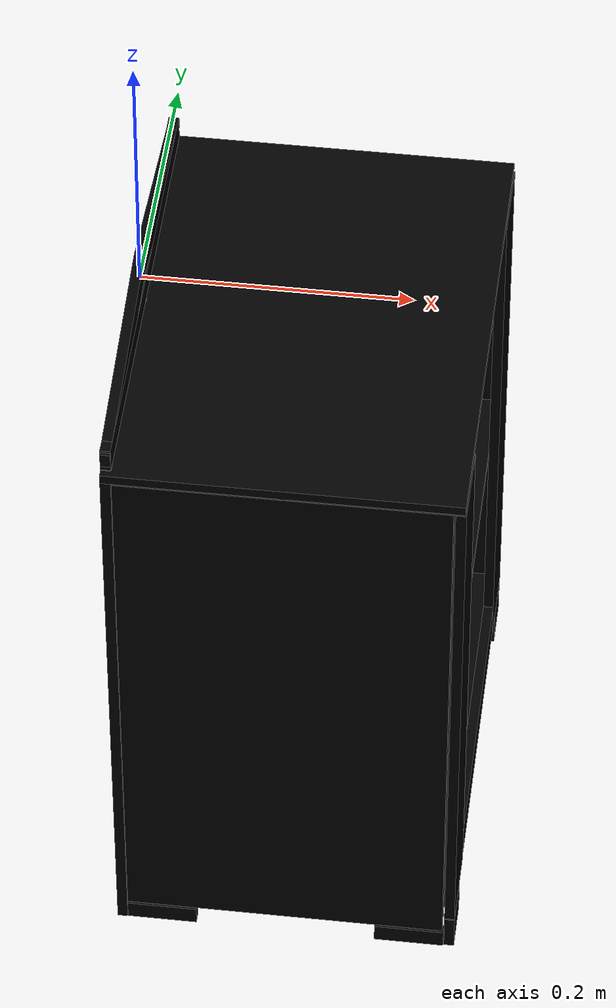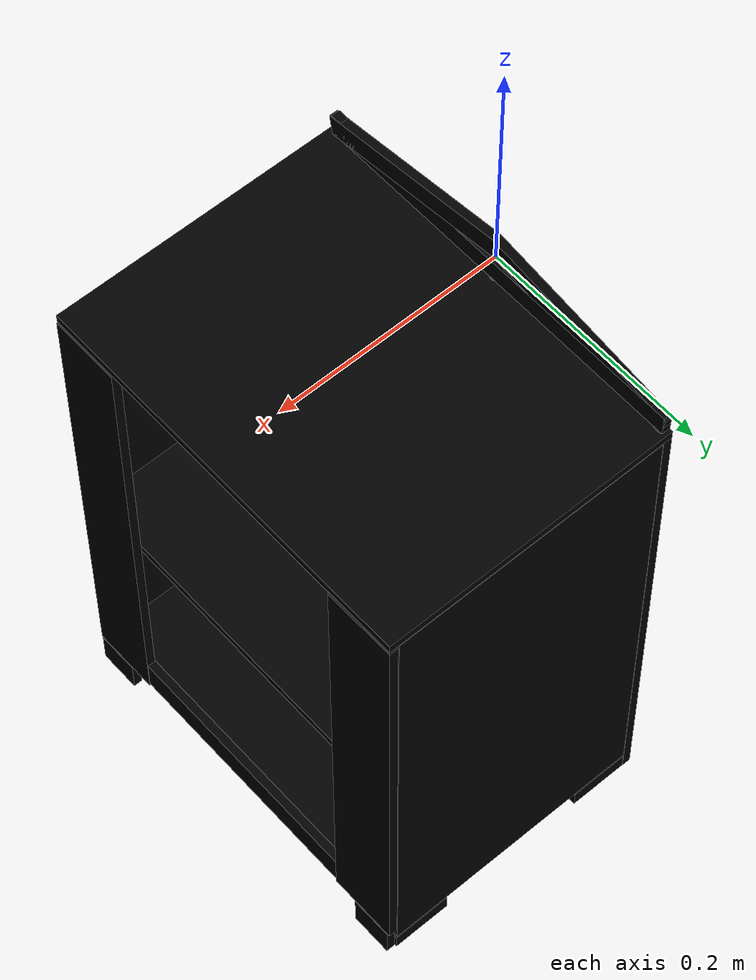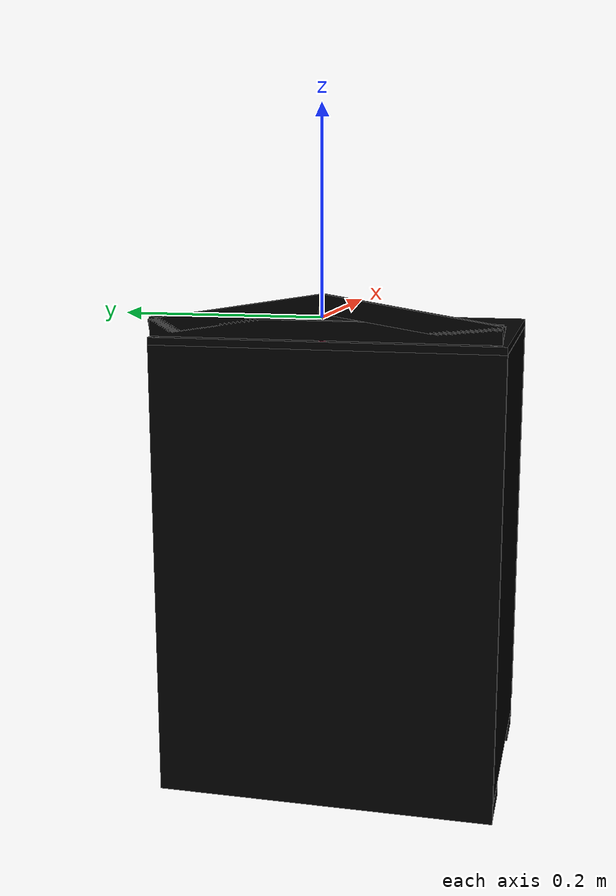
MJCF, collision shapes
<mujoco model="bookcase_hensvik_0565">
    <custom>
        <numeric data="-0.34873 0.261326 0.00379 0.703856 0.067999 -0.703802 0.068005" name="0_part0_initpos"/>
        <numeric data="-0.249609 0.321251 0.003831 0.707107 0.000464 -0.707107 0.000464" name="9_part9_initpos"/>
        <numeric data="0.510708 -0.221477 0.003831 0.999664 -0.0 0.0 0.025928" name="8_part8_initpos"/>
        <numeric data="0.424423 0.078883 0.003841 0.706489 0.029149 0.70652 -0.029199" name="7_part7_initpos"/>
        <numeric data="-0.602976 -0.20608 0.003841 0.506919 0.493015 -0.506909 0.492963" name="6_part6_initpos"/>
        <numeric data="0.063299 -0.234001 0.003831 0.706994 -0.012618 0.706994 0.012618" name="5_part5_initpos"/>
        <numeric data="-0.032413 0.174661 0.003831 0.999008 0.0 0.0 0.044532" name="4_part4_initpos"/>
        <numeric data="-0.568739 0.259396 0.003831 0.9995 0.0 0.0 0.031628" name="3_part3_initpos"/>
        <numeric data="-0.370656 -0.206767 0.003793 0.705874 -0.70591 -0.041433 0.041431" name="2_part2_initpos"/>
        <numeric data="0.402221 0.303398 0.003771 0.495099 -0.495124 -0.504854 0.504828" name="1_part1_initpos"/>
    </custom>
    <asset>
        <mesh file="bookcase_hensvik_0565/0.stl" name="part0" scale="0.00038 0.00038 0.00038"/>
        <mesh file="bookcase_hensvik_0565/9.stl" name="part9" scale="0.00038 0.00038 0.00038"/>
        <mesh file="bookcase_hensvik_0565/8.stl" name="part8" scale="0.00038 0.00038 0.00038"/>
        <mesh file="bookcase_hensvik_0565/7.stl" name="part7" scale="0.00038 0.00038 0.00038"/>
        <mesh file="bookcase_hensvik_0565/6.stl" name="part6" scale="0.00038 0.00038 0.00038"/>
        <mesh file="bookcase_hensvik_0565/5.stl" name="part5" scale="0.00038 0.00038 0.00038"/>
        <mesh file="bookcase_hensvik_0565/4.stl" name="part4" scale="0.00038 0.00038 0.00038"/>
        <mesh file="bookcase_hensvik_0565/3.stl" name="part3" scale="0.00038 0.00038 0.00038"/>
        <mesh file="bookcase_hensvik_0565/2.stl" name="part2" scale="0.00038 0.00038 0.00038"/>
        <mesh file="bookcase_hensvik_0565/1.stl" name="part1" scale="0.00038 0.00038 0.00038"/>
    </asset>
    <equality>
        <weld active="false" body1="6_part6" body2="4_part4" solimp="1 1 0.5" solref="0.01 0.3"/>
        <weld active="false" body1="9_part9" body2="4_part4" solimp="1 1 0.5" solref="0.01 0.3"/>
        <weld active="false" body1="4_part4" body2="2_part2" solimp="1 1 0.5" solref="0.01 0.3"/>
        <weld active="false" body1="7_part7" body2="4_part4" solimp="1 1 0.5" solref="0.01 0.3"/>
        <weld active="false" body1="0_part0" body2="8_part8" solimp="1 1 0.5" solref="0.01 0.3"/>
        <weld active="false" body1="4_part4" body2="1_part1" solimp="1 1 0.5" solref="0.01 0.3"/>
        <weld active="false" body1="3_part3" body2="1_part1" solimp="1 1 0.5" solref="0.01 0.3"/>
        <weld active="false" body1="3_part3" body2="2_part2" solimp="1 1 0.5" solref="0.01 0.3"/>
        <weld active="false" body1="5_part5" body2="4_part4" solimp="1 1 0.5" solref="0.01 0.3"/>
        <weld active="false" body1="8_part8" body2="1_part1" solimp="1 1 0.5" solref="0.01 0.3"/>
        <weld active="false" body1="8_part8" body2="2_part2" solimp="1 1 0.5" solref="0.01 0.3"/>
    </equality>
    <worldbody>
        <body name="0_part0" pos="0.0 0.0 -0.0" quat="1 0 0 0">
            <geom conaffinity="0" contype="0" density="0" mesh="part0" name="0_part0_mesh" pos="0.0 0.0 0.0"
                  rgba="0.82 0.71 0.55 1" type="mesh"/>
            <site name="0_part0_horizontal_radius_site" pos="0.0 0.0 -0.0" quat="1 0 0 0" rgba="0 0 0 0"
                  size="0.00038"/>
            <site name="0_part0_top_site" pos="0.0 0.0 0.023418559098" quat="1 0 0 0" rgba="0 0 0 0" size="0.00038"/>
            <site name="0_part0_bottom_site" pos="0.0 0.0 -0.023418559098" quat="1 0 0 0" rgba="0 0 0 0"
                  size="0.00038"/>
            <site name="0_part0_corner_site8" pos="-0.0038608 0.178562 0.023418559098" quat="1 0 0 0" rgba="0 0 0 0"
                  size="0.0076"/>
            <site name="0_part0_corner_site7" pos="0.0038608 0.178562 0.023418559098" quat="1 0 0 0" rgba="0 0 0 0"
                  size="0.0076"/>
            <site name="0_part0_corner_site6" pos="0.0038608 -0.178562 0.023418559098" quat="1 0 0 0" rgba="0 0 0 0"
                  size="0.0076"/>
            <site name="0_part0_corner_site5" pos="-0.0038608 -0.178562 0.023418559098" quat="1 0 0 0" rgba="0 0 0 0"
                  size="0.0076"/>
            <site name="0_part0_corner_site4" pos="-0.0038608 0.178562 -0.023418559098" quat="1 0 0 0" rgba="0 0 0 0"
                  size="0.0076"/>
            <site name="0_part0_corner_site3" pos="0.0038608 0.178562 -0.023418559098" quat="1 0 0 0" rgba="0 0 0 0"
                  size="0.0076"/>
            <site name="0_part0_corner_site2" pos="0.0038608 -0.178562 -0.023418559098" quat="1 0 0 0" rgba="0 0 0 0"
                  size="0.0076"/>
            <site name="0_part0_corner_site1" pos="-0.0038608 -0.178562 -0.023418559098" quat="1 0 0 0" rgba="0 0 0 0"
                  size="0.0076"/>
            <geom density="50" name="noviz_collision_0_part0_0" pos="0.0 0.0010547698000000002 -0.01254" quat="1 0 0 0"
                  rgba="0 0 0 0" size="0.0038 0.1748 0.009500000000000001" solref="0.001 1" type="box"/>
            <geom density="50" name="noviz_collision_0_part0_1" pos="0.0 -0.08626 -0.00038"
                  quat="0.9969174 0.07845912 0 0" rgba="0 0 0 0" size="0.0038 0.0893 0.009500000000000001"
                  solref="0.001 1" type="box"/>
            <geom density="50" name="noviz_collision_0_part0_2" pos="0.0 0.08778000000000001 -0.00076"
                  quat="0.9969174 -0.07845903 0 0" rgba="0 0 0 0" size="0.0038 0.0893 0.009500000000000001"
                  solref="0.001 1" type="box"/>
            <site name="topback-top,0,180,conn_site1" pos="0.00045599999999999997 0.0 -0.02318" quat="1 0 0 0"
                  rgba="0.9019 0.0980 0.2941 0.3" size="0.0038"/>
        </body>
        <body name="9_part9" pos="0.252882402394 6.992e-09 -0.461829168004" quat="1 0 0 0">
            <geom conaffinity="0" contype="0" density="0" mesh="part9" name="9_part9_mesh" pos="0.0 0.0 0.0"
                  rgba="0.82 0.71 0.55 1" type="mesh"/>
            <site name="9_part9_horizontal_radius_site" pos="7.600000000000001e-11 -3.8000000000000004e-11 0.0"
                  quat="1 0 0 0" rgba="0 0 0 0" size="0.00038"/>
            <site name="9_part9_top_site" pos="3.8000000000000004e-11 -3.8000000000000004e-11 0.014478000000000001"
                  quat="1 0 0 0" rgba="0 0 0 0" size="0.00038"/>
            <site name="9_part9_bottom_site" pos="3.8000000000000004e-11 -3.8000000000000004e-11 -0.014478000000000001"
                  quat="1 0 0 0" rgba="0 0 0 0" size="0.00038"/>
            <site name="9_part9_corner_site8" pos="-0.0038608023560000003 0.115824006954 0.014478000000000001"
                  quat="1 0 0 0" rgba="0 0 0 0" size="0.0076"/>
            <site name="9_part9_corner_site7" pos="0.0038608024700000003 0.115824006954 0.014478000000000001"
                  quat="1 0 0 0" rgba="0 0 0 0" size="0.0076"/>
            <site name="9_part9_corner_site6" pos="0.0038608024700000003 -0.11582400699199999 0.014478000000000001"
                  quat="1 0 0 0" rgba="0 0 0 0" size="0.0076"/>
            <site name="9_part9_corner_site5" pos="-0.0038608023560000003 -0.11582400699199999 0.014478000000000001"
                  quat="1 0 0 0" rgba="0 0 0 0" size="0.0076"/>
            <site name="9_part9_corner_site4" pos="-0.0038608023560000003 0.115824006954 -0.014478000000000001"
                  quat="1 0 0 0" rgba="0 0 0 0" size="0.0076"/>
            <site name="9_part9_corner_site3" pos="0.0038608024700000003 0.115824006954 -0.014478000000000001"
                  quat="1 0 0 0" rgba="0 0 0 0" size="0.0076"/>
            <site name="9_part9_corner_site2" pos="0.0038608024700000003 -0.11582400699199999 -0.014478000000000001"
                  quat="1 0 0 0" rgba="0 0 0 0" size="0.0076"/>
            <site name="9_part9_corner_site1" pos="-0.0038608023560000003 -0.11582400699199999 -0.014478000000000001"
                  quat="1 0 0 0" rgba="0 0 0 0" size="0.0076"/>
            <geom density="50" name="noviz_collision_9_part9_0" pos="0.0 -7.6e-09 0.0" quat="1 0 0 0" rgba="0 0 0 0"
                  size="0.0038607885999999998 0.11582400000000001 0.014477992400000002" solref="0.001 1" type="box"/>
            <site name="front-bottom,0,conn_site1" pos="-0.0043623924 -7.6e-09 -0.0105108114"
                  quat="0.7071067 0 0.7071068 0" rgba="0.2352 0.7058 0.2941 0.3" size="0.0038"/>
        </body>
        <body name="8_part8" pos="0.126441201216 1.254e-09 -0.027279346102" quat="1 0 0 0">
            <geom conaffinity="0" contype="0" density="0" mesh="part8" name="8_part8_mesh" pos="0.0 0.0 0.0"
                  rgba="0.82 0.71 0.55 1" type="mesh"/>
            <site name="8_part8_horizontal_radius_site" pos="0.0 0.0 -0.0" quat="1 0 0 0" rgba="0 0 0 0"
                  size="0.00038"/>
            <site name="8_part8_top_site" pos="0.0 0.0 0.0038608129960000003" quat="1 0 0 0" rgba="0 0 0 0"
                  size="0.00038"/>
            <site name="8_part8_bottom_site" pos="0.0 0.0 -0.0038608129960000003" quat="1 0 0 0" rgba="0 0 0 0"
                  size="0.00038"/>
            <site name="8_part8_corner_site8" pos="-0.130302009272 0.178562009272 0.0038608129960000003" quat="1 0 0 0"
                  rgba="0 0 0 0" size="0.0076"/>
            <site name="8_part8_corner_site7" pos="0.130302009272 0.178562009272 0.0038608129960000003" quat="1 0 0 0"
                  rgba="0 0 0 0" size="0.0076"/>
            <site name="8_part8_corner_site6" pos="0.130302009272 -0.178562009272 0.0038608129960000003" quat="1 0 0 0"
                  rgba="0 0 0 0" size="0.0076"/>
            <site name="8_part8_corner_site5" pos="-0.130302009272 -0.178562009272 0.0038608129960000003" quat="1 0 0 0"
                  rgba="0 0 0 0" size="0.0076"/>
            <site name="8_part8_corner_site4" pos="-0.130302009272 0.178562009272 -0.0038608129960000003" quat="1 0 0 0"
                  rgba="0 0 0 0" size="0.0076"/>
            <site name="8_part8_corner_site3" pos="0.130302009272 0.178562009272 -0.0038608129960000003" quat="1 0 0 0"
                  rgba="0 0 0 0" size="0.0076"/>
            <site name="8_part8_corner_site2" pos="0.130302009272 -0.178562009272 -0.0038608129960000003" quat="1 0 0 0"
                  rgba="0 0 0 0" size="0.0076"/>
            <site name="8_part8_corner_site1" pos="-0.130302009272 -0.178562009272 -0.0038608129960000003"
                  quat="1 0 0 0" rgba="0 0 0 0" size="0.0076"/>
            <geom density="50" name="noviz_collision_8_part8_0" pos="-0.0003518648 0.0 -7.440400000000001e-06"
                  quat="1 0 0 0" rgba="0 0 0 0" size="0.129950158 0.178562 0.0038533747999999995" solref="0.001 1"
                  type="box"/>
            <site name="top-side,0,180,conn_site2" pos="0.0 0.17442000000000002 -0.0038608114" quat="1 0 0 0"
                  rgba="1.0 0.8823 0.0980 0.3" size="0.0038"/>
            <site name="top-side,0,180,conn_site1" pos="0.0 -0.1748 -0.0038608114" quat="1 0 0 0"
                  rgba="1.0 0.8823 0.0980 0.3" size="0.0038"/>
            <site name="top-topback,0,180,conn_site1" pos="-0.1259852 0.0 0.004099345" quat="1 0 0 0"
                  rgba="0.9019 0.0980 0.2941 0.3" size="0.0038"/>
        </body>
        <body name="7_part7" pos="0.252882402394 -0.14719300106400002 -0.272440159098" quat="1 0 0 0">
            <geom conaffinity="0" contype="0" density="0" mesh="part7" name="7_part7_mesh" pos="0.0 0.0 0.0"
                  rgba="0.82 0.71 0.55 1" type="mesh"/>
            <site name="7_part7_horizontal_radius_site" pos="7.600000000000001e-11 0.0 -0.0" quat="1 0 0 0"
                  rgba="0 0 0 0" size="0.00038"/>
            <site name="7_part7_top_site" pos="3.8000000000000004e-11 0.0 0.24130000000000001" quat="1 0 0 0"
                  rgba="0 0 0 0" size="0.00038"/>
            <site name="7_part7_bottom_site" pos="3.8000000000000004e-11 0.0 -0.24130000000000001" quat="1 0 0 0"
                  rgba="0 0 0 0" size="0.00038"/>
            <site name="7_part7_corner_site8" pos="-0.0038608023560000003 0.031369001178000004 0.24130000000000001"
                  quat="1 0 0 0" rgba="0 0 0 0" size="0.0076"/>
            <site name="7_part7_corner_site7" pos="0.0038608024700000003 0.031369001178000004 0.24130000000000001"
                  quat="1 0 0 0" rgba="0 0 0 0" size="0.0076"/>
            <site name="7_part7_corner_site6" pos="0.0038608024700000003 -0.031369001178000004 0.24130000000000001"
                  quat="1 0 0 0" rgba="0 0 0 0" size="0.0076"/>
            <site name="7_part7_corner_site5" pos="-0.0038608023560000003 -0.031369001178000004 0.24130000000000001"
                  quat="1 0 0 0" rgba="0 0 0 0" size="0.0076"/>
            <site name="7_part7_corner_site4" pos="-0.0038608023560000003 0.031369001178000004 -0.24130000000000001"
                  quat="1 0 0 0" rgba="0 0 0 0" size="0.0076"/>
            <site name="7_part7_corner_site3" pos="0.0038608024700000003 0.031369001178000004 -0.24130000000000001"
                  quat="1 0 0 0" rgba="0 0 0 0" size="0.0076"/>
            <site name="7_part7_corner_site2" pos="0.0038608024700000003 -0.031369001178000004 -0.24130000000000001"
                  quat="1 0 0 0" rgba="0 0 0 0" size="0.0076"/>
            <site name="7_part7_corner_site1" pos="-0.0038608023560000003 -0.031369001178000004 -0.24130000000000001"
                  quat="1 0 0 0" rgba="0 0 0 0" size="0.0076"/>
            <site name="leftfront-bottom,0,conn_site1" pos="-0.0039823924 0.0217930038 -0.20000623599999998"
                  quat="0.7071067 0 0.7071068 0" rgba="0.2627 0.3882 0.8470 0.3" size="0.0038"/>
            <geom density="50" name="noviz_collision_7_part7_0" pos="0.0 -0.0004598304 0.0159401678" quat="1 0 0 0"
                  rgba="0 0 0 0" size="0.0038607885999999998 0.030909162000000004 0.22419999999999998" solref="0.001 1"
                  type="box"/>
            <geom density="50" name="noviz_collision_7_part7_1" pos="0.0 -0.011646996199999999 -0.225359836"
                  quat="1 0 0 0" rgba="0 0 0 0" size="0.0038607885999999998 0.019000000000000003 0.0152"
                  solref="0.001 1" type="box"/>
        </body>
        <body name="6_part6" pos="0.252882402394 0.14719300174799999 -0.272440159098" quat="1 0 0 0">
            <geom conaffinity="0" contype="0" density="0" mesh="part6" name="6_part6_mesh" pos="0.0 0.0 0.0"
                  rgba="0.82 0.71 0.55 1" type="mesh"/>
            <site name="6_part6_horizontal_radius_site" pos="7.600000000000001e-11 -6.080000000000001e-10 -0.0"
                  quat="1 0 0 0" rgba="0 0 0 0" size="0.00038"/>
            <site name="6_part6_top_site" pos="3.8000000000000004e-11 -6.080000000000001e-10 0.24130000000000001"
                  quat="1 0 0 0" rgba="0 0 0 0" size="0.00038"/>
            <site name="6_part6_bottom_site" pos="3.8000000000000004e-11 -6.080000000000001e-10 -0.24130000000000001"
                  quat="1 0 0 0" rgba="0 0 0 0" size="0.00038"/>
            <site name="6_part6_corner_site8" pos="-0.0038608023560000003 0.031369001178000004 0.24130000000000001"
                  quat="1 0 0 0" rgba="0 0 0 0" size="0.0076"/>
            <site name="6_part6_corner_site7" pos="0.0038608024700000003 0.031369001178000004 0.24130000000000001"
                  quat="1 0 0 0" rgba="0 0 0 0" size="0.0076"/>
            <site name="6_part6_corner_site6" pos="0.0038608024700000003 -0.031369002356 0.24130000000000001"
                  quat="1 0 0 0" rgba="0 0 0 0" size="0.0076"/>
            <site name="6_part6_corner_site5" pos="-0.0038608023560000003 -0.031369002356 0.24130000000000001"
                  quat="1 0 0 0" rgba="0 0 0 0" size="0.0076"/>
            <site name="6_part6_corner_site4" pos="-0.0038608023560000003 0.031369001178000004 -0.24130000000000001"
                  quat="1 0 0 0" rgba="0 0 0 0" size="0.0076"/>
            <site name="6_part6_corner_site3" pos="0.0038608024700000003 0.031369001178000004 -0.24130000000000001"
                  quat="1 0 0 0" rgba="0 0 0 0" size="0.0076"/>
            <site name="6_part6_corner_site2" pos="0.0038608024700000003 -0.031369002356 -0.24130000000000001"
                  quat="1 0 0 0" rgba="0 0 0 0" size="0.0076"/>
            <site name="6_part6_corner_site1" pos="-0.0038608023560000003 -0.031369002356 -0.24130000000000001"
                  quat="1 0 0 0" rgba="0 0 0 0" size="0.0076"/>
            <site name="rightfront-bottom,0,conn_site1" pos="-0.0039823924 -0.0206530038 -0.20000623599999998"
                  quat="0.7071067 0 0.7071068 0" rgba="0.9607 0.5098 0.1921 0.3" size="0.0038"/>
            <geom density="50" name="noviz_collision_6_part6_0" pos="0.0 0.0004598304 0.0159401678" quat="1 0 0 0"
                  rgba="0 0 0 0" size="0.0038607885999999998 0.031828838 0.22419999999999998" solref="0.001 1"
                  type="box"/>
            <geom density="50" name="noviz_collision_6_part6_1" pos="0.0 0.0105069962 -0.225359836" quat="1 0 0 0"
                  rgba="0 0 0 0" size="0.0038607885999999998 0.019000000000000003 0.0152" solref="0.001 1" type="box"/>
        </body>
        <body name="5_part5" pos="-8.74e-10 1.254e-09 -0.272440159098" quat="1 0 0 0">
            <geom conaffinity="0" contype="0" density="0" mesh="part5" name="5_part5_mesh" pos="0.0 0.0 0.0"
                  rgba="0.82 0.71 0.55 1" type="mesh"/>
            <site name="5_part5_horizontal_radius_site" pos="0.0 0.0 -0.0" quat="1 0 0 0" rgba="0 0 0 0"
                  size="0.00038"/>
            <site name="5_part5_top_site" pos="0.0 0.0 0.24130000000000001" quat="1 0 0 0" rgba="0 0 0 0"
                  size="0.00038"/>
            <site name="5_part5_bottom_site" pos="0.0 0.0 -0.24130000000000001" quat="1 0 0 0" rgba="0 0 0 0"
                  size="0.00038"/>
            <site name="5_part5_corner_site8" pos="-0.0038608014060000006 0.178562009272 0.24130000000000001"
                  quat="1 0 0 0" rgba="0 0 0 0" size="0.0076"/>
            <site name="5_part5_corner_site7" pos="0.0038608014060000006 0.178562009272 0.24130000000000001"
                  quat="1 0 0 0" rgba="0 0 0 0" size="0.0076"/>
            <site name="5_part5_corner_site6" pos="0.0038608014060000006 -0.178562009272 0.24130000000000001"
                  quat="1 0 0 0" rgba="0 0 0 0" size="0.0076"/>
            <site name="5_part5_corner_site5" pos="-0.0038608014060000006 -0.178562009272 0.24130000000000001"
                  quat="1 0 0 0" rgba="0 0 0 0" size="0.0076"/>
            <site name="5_part5_corner_site4" pos="-0.0038608014060000006 0.178562009272 -0.24130000000000001"
                  quat="1 0 0 0" rgba="0 0 0 0" size="0.0076"/>
            <site name="5_part5_corner_site3" pos="0.0038608014060000006 0.178562009272 -0.24130000000000001"
                  quat="1 0 0 0" rgba="0 0 0 0" size="0.0076"/>
            <site name="5_part5_corner_site2" pos="0.0038608014060000006 -0.178562009272 -0.24130000000000001"
                  quat="1 0 0 0" rgba="0 0 0 0" size="0.0076"/>
            <site name="5_part5_corner_site1" pos="-0.0038608014060000006 -0.178562009272 -0.24130000000000001"
                  quat="1 0 0 0" rgba="0 0 0 0" size="0.0076"/>
            <geom density="50" name="noviz_collision_5_part5_0" pos="0.0 0.0 0.0" quat="1 0 0 0" rgba="0 0 0 0"
                  size="0.0038608038 0.178562 0.24129996200000003" solref="0.001 1" type="box"/>
            <site name="back-bottom,0,conn_site1" pos="0.0034200000000000003 0.0 -0.200279836"
                  quat="0.7071067 0 0.7071068 0" rgba="0.5686 0.1176 0.7058 0.3" size="0.0038"/>
        </body>
        <body name="4_part4" pos="0.126441203724 0.0 -0.472446367662" quat="1 0 0 0">
            <geom conaffinity="0" contype="0" density="0" mesh="part4" name="4_part4_mesh" pos="0.0 0.0 0.0"
                  rgba="0.82 0.71 0.55 1" type="mesh"/>
            <site name="4_part4_horizontal_radius_site" pos="2.7740000000000006e-09 0.0 -3.8000000000000004e-11"
                  quat="1 0 0 0" rgba="0 0 0 0" size="0.00038"/>
            <site name="4_part4_top_site" pos="2.7740000000000006e-09 0.0 0.0038608003040000003" quat="1 0 0 0"
                  rgba="0 0 0 0" size="0.00038"/>
            <site name="4_part4_bottom_site" pos="2.7740000000000006e-09 0.0 -0.003860800342" quat="1 0 0 0"
                  rgba="0 0 0 0" size="0.00038"/>
            <site name="4_part4_corner_site8" pos="-0.12258040094999999 0.1708404 0.0038608003040000003" quat="1 0 0 0"
                  rgba="0 0 0 0" size="0.0076"/>
            <site name="4_part4_corner_site7" pos="0.122580406498 0.1708404 0.0038608003040000003" quat="1 0 0 0"
                  rgba="0 0 0 0" size="0.0076"/>
            <site name="4_part4_corner_site6" pos="0.122580406498 -0.1708404 0.0038608003040000003" quat="1 0 0 0"
                  rgba="0 0 0 0" size="0.0076"/>
            <site name="4_part4_corner_site5" pos="-0.12258040094999999 -0.1708404 0.0038608003040000003" quat="1 0 0 0"
                  rgba="0 0 0 0" size="0.0076"/>
            <site name="4_part4_corner_site4" pos="-0.12258040094999999 0.1708404 -0.003860800342" quat="1 0 0 0"
                  rgba="0 0 0 0" size="0.0076"/>
            <site name="4_part4_corner_site3" pos="0.122580406498 0.1708404 -0.003860800342" quat="1 0 0 0"
                  rgba="0 0 0 0" size="0.0076"/>
            <site name="4_part4_corner_site2" pos="0.122580406498 -0.1708404 -0.003860800342" quat="1 0 0 0"
                  rgba="0 0 0 0" size="0.0076"/>
            <site name="4_part4_corner_site1" pos="-0.12258040094999999 -0.1708404 -0.003860800342" quat="1 0 0 0"
                  rgba="0 0 0 0" size="0.0076"/>
            <site name="bottom-right,0,180,conn_site1" pos="-0.0005773416 0.17084800000000003 -4.5600000000000005e-08"
                  quat="0.7071067 0.7071068 0 0" rgba="0.2745 0.9411 0.9411 0.3" size="0.0038"/>
            <site name="bottom-left,0,180,conn_site1" pos="-0.0005773416 -0.171 -4.5600000000000005e-08"
                  quat="0.7071067 -0.7071068 0 0" rgba="0.9411 0.1960 0.9019 0.3" size="0.0038"/>
            <site name="bottom-leftfront,0,conn_site1" pos="0.12245879999999999 -0.1254 -4.5600000000000005e-08"
                  quat="0.7071067 0 0.7071068 0" rgba="0.2627 0.3882 0.8470 0.3" size="0.0038"/>
            <site name="bottom-rightfront,0,conn_site1" pos="0.12245879999999999 0.12654 -4.5600000000000005e-08"
                  quat="0.7071067 0 0.7071068 0" rgba="0.9607 0.5098 0.1921 0.3" size="0.0038"/>
            <geom density="50" name="noviz_collision_4_part4_0" pos="-1.1400000000000001e-08 0.0 0.0" quat="1 0 0 0"
                  rgba="0 0 0 0" size="0.12258039999999999 0.1708404 0.0038608114" solref="0.001 1" type="box"/>
            <site name="bottom-back,0,conn_site1" pos="-0.12302120000000001 0.0 -0.00027363420000000004"
                  quat="0.7071067 0 0.7071068 0" rgba="0.5686 0.1176 0.7058 0.3" size="0.0038"/>
            <site name="bottom-front,0,conn_site1" pos="0.1220788 0.0 0.0001063658" quat="0.7071067 0 0.7071068 0"
                  rgba="0.2352 0.7058 0.2941 0.3" size="0.0038"/>
        </body>
        <body name="3_part3" pos="0.126441203724 0.0 -0.272440159364" quat="1 0 0 0">
            <geom conaffinity="0" contype="0" density="0" mesh="part3" name="3_part3_mesh" pos="0.0 0.0 0.0"
                  rgba="0.82 0.71 0.55 1" type="mesh"/>
            <site name="3_part3_horizontal_radius_site" pos="2.7740000000000006e-09 0.0 0.0" quat="1 0 0 0"
                  rgba="0 0 0 0" size="0.00038"/>
            <site name="3_part3_top_site" pos="2.7740000000000006e-09 0.0 0.0038608" quat="1 0 0 0" rgba="0 0 0 0"
                  size="0.00038"/>
            <site name="3_part3_bottom_site" pos="2.7740000000000006e-09 0.0 -0.0038608" quat="1 0 0 0" rgba="0 0 0 0"
                  size="0.00038"/>
            <site name="3_part3_corner_site8" pos="-0.12258040094999999 0.1708404 0.0038608" quat="1 0 0 0"
                  rgba="0 0 0 0" size="0.0076"/>
            <site name="3_part3_corner_site7" pos="0.122580406498 0.1708404 0.0038608" quat="1 0 0 0" rgba="0 0 0 0"
                  size="0.0076"/>
            <site name="3_part3_corner_site6" pos="0.122580406498 -0.1708404 0.0038608" quat="1 0 0 0" rgba="0 0 0 0"
                  size="0.0076"/>
            <site name="3_part3_corner_site5" pos="-0.12258040094999999 -0.1708404 0.0038608" quat="1 0 0 0"
                  rgba="0 0 0 0" size="0.0076"/>
            <site name="3_part3_corner_site4" pos="-0.12258040094999999 0.1708404 -0.0038608" quat="1 0 0 0"
                  rgba="0 0 0 0" size="0.0076"/>
            <site name="3_part3_corner_site3" pos="0.122580406498 0.1708404 -0.0038608" quat="1 0 0 0" rgba="0 0 0 0"
                  size="0.0076"/>
            <site name="3_part3_corner_site2" pos="0.122580406498 -0.1708404 -0.0038608" quat="1 0 0 0" rgba="0 0 0 0"
                  size="0.0076"/>
            <site name="3_part3_corner_site1" pos="-0.12258040094999999 -0.1708404 -0.0038608" quat="1 0 0 0"
                  rgba="0 0 0 0" size="0.0076"/>
            <site name="flat-side,0,180,conn_site1" pos="0.0 -0.16986 -0.0007798322000000001"
                  quat="0.7071067 0.7071068 0 0" rgba="0.7372 0.9647 0.0470 0.3" size="0.0038"/>
            <site name="flat-side,0,180,conn_site2" pos="0.0 0.17138 -0.0007798322000000001"
                  quat="0.7071067 -0.7071068 0 0" rgba="0.7372 0.9647 0.0470 0.3" size="0.0038"/>
            <geom density="50" name="noviz_collision_3_part3_0" pos="-1.1400000000000001e-08 0.0 0.0" quat="1 0 0 0"
                  rgba="0 0 0 0" size="0.12258039999999999 0.1708404 0.0038607885999999998" solref="0.001 1"
                  type="box"/>
        </body>
        <body name="2_part2" pos="0.126441203724 -0.174701200836 -0.272440159098" quat="1 0 0 0">
            <geom conaffinity="0" contype="0" density="0" mesh="part2" name="2_part2_mesh" pos="0.0 0.0 0.0"
                  rgba="0.82 0.71 0.55 1" type="mesh"/>
            <site name="2_part2_horizontal_radius_site" pos="2.7740000000000006e-09 0.0 -0.0" quat="1 0 0 0"
                  rgba="0 0 0 0" size="0.00038"/>
            <site name="2_part2_top_site" pos="2.7740000000000006e-09 0.0 0.24130000000000001" quat="1 0 0 0"
                  rgba="0 0 0 0" size="0.00038"/>
            <site name="2_part2_bottom_site" pos="2.7740000000000006e-09 0.0 -0.24130000000000001" quat="1 0 0 0"
                  rgba="0 0 0 0" size="0.00038"/>
            <site name="2_part2_corner_site8" pos="-0.12258040094999999 0.0038608014060000006 0.24130000000000001"
                  quat="1 0 0 0" rgba="0 0 0 0" size="0.0076"/>
            <site name="2_part2_corner_site7" pos="0.122580406498 0.0038608014060000006 0.24130000000000001"
                  quat="1 0 0 0" rgba="0 0 0 0" size="0.0076"/>
            <site name="2_part2_corner_site6" pos="0.122580406498 -0.0038608014060000006 0.24130000000000001"
                  quat="1 0 0 0" rgba="0 0 0 0" size="0.0076"/>
            <site name="2_part2_corner_site5" pos="-0.12258040094999999 -0.0038608014060000006 0.24130000000000001"
                  quat="1 0 0 0" rgba="0 0 0 0" size="0.0076"/>
            <site name="2_part2_corner_site4" pos="-0.12258040094999999 0.0038608014060000006 -0.24130000000000001"
                  quat="1 0 0 0" rgba="0 0 0 0" size="0.0076"/>
            <site name="2_part2_corner_site3" pos="0.122580406498 0.0038608014060000006 -0.24130000000000001"
                  quat="1 0 0 0" rgba="0 0 0 0" size="0.0076"/>
            <site name="2_part2_corner_site2" pos="0.122580406498 -0.0038608014060000006 -0.24130000000000001"
                  quat="1 0 0 0" rgba="0 0 0 0" size="0.0076"/>
            <site name="2_part2_corner_site1" pos="-0.12258040094999999 -0.0038608014060000006 -0.24130000000000001"
                  quat="1 0 0 0" rgba="0 0 0 0" size="0.0076"/>
            <site name="left-bottom,0,180,conn_site1" pos="-0.0005773416 0.0037011962000000004 -0.20000623599999998"
                  quat="0.7071067 -0.7071068 0 0" rgba="0.9411 0.1960 0.9019 0.3" size="0.0038"/>
            <site name="side-flat,0,180,conn_site1" pos="0.0 0.004841196200000001 -0.0007798322000000001"
                  quat="0.7071067 0.7071068 0 0" rgba="0.7372 0.9647 0.0470 0.3" size="0.0038"/>
            <geom density="50" name="noviz_collision_2_part2_0"
                  pos="-0.0005773530000000001 1.12594e-05 0.008340167800000001" quat="1 0 0 0" rgba="0 0 0 0"
                  size="0.1216 0.0038 0.2318" solref="0.001 1" type="box"/>
            <geom density="50" name="noviz_collision_2_part2_1"
                  pos="0.09547879999999999 1.12594e-05 -0.23333983599999997" quat="1 0 0 0" rgba="0 0 0 0"
                  size="0.026600000000000002 0.0038 0.0076" solref="0.001 1" type="box"/>
            <geom density="50" name="noviz_collision_2_part2_2" pos="-0.0956612 1.12594e-05 -0.23333983599999997"
                  quat="1 0 0 0" rgba="0 0 0 0" size="0.026600000000000002 0.0038 0.0076" solref="0.001 1" type="box"/>
            <site name="side-top,0,180,conn_site1"
                  pos="-1.1400000000000001e-08 -9.880380000000001e-05 0.24130000000000001" quat="1 0 0 0"
                  rgba="1.0 0.8823 0.0980 0.3" size="0.0038"/>
        </body>
        <body name="1_part1" pos="0.126441203724 0.174701191754 -0.272440159098" quat="1 0 0 0">
            <geom conaffinity="0" contype="0" density="0" mesh="part1" name="1_part1_mesh" pos="0.0 0.0 0.0"
                  rgba="0.82 0.71 0.55 1" type="mesh"/>
            <site name="1_part1_horizontal_radius_site" pos="2.7740000000000006e-09 0.0 -0.0" quat="1 0 0 0"
                  rgba="0 0 0 0" size="0.00038"/>
            <site name="1_part1_top_site" pos="2.7740000000000006e-09 0.0 0.24130000000000001" quat="1 0 0 0"
                  rgba="0 0 0 0" size="0.00038"/>
            <site name="1_part1_bottom_site" pos="2.7740000000000006e-09 0.0 -0.24130000000000001" quat="1 0 0 0"
                  rgba="0 0 0 0" size="0.00038"/>
            <site name="1_part1_corner_site8" pos="-0.12258040094999999 0.0038608129960000003 0.24130000000000001"
                  quat="1 0 0 0" rgba="0 0 0 0" size="0.0076"/>
            <site name="1_part1_corner_site7" pos="0.122580406498 0.0038608129960000003 0.24130000000000001"
                  quat="1 0 0 0" rgba="0 0 0 0" size="0.0076"/>
            <site name="1_part1_corner_site6" pos="0.122580406498 -0.0038608129960000003 0.24130000000000001"
                  quat="1 0 0 0" rgba="0 0 0 0" size="0.0076"/>
            <site name="1_part1_corner_site5" pos="-0.12258040094999999 -0.0038608129960000003 0.24130000000000001"
                  quat="1 0 0 0" rgba="0 0 0 0" size="0.0076"/>
            <site name="1_part1_corner_site4" pos="-0.12258040094999999 0.0038608129960000003 -0.24130000000000001"
                  quat="1 0 0 0" rgba="0 0 0 0" size="0.0076"/>
            <site name="1_part1_corner_site3" pos="0.122580406498 0.0038608129960000003 -0.24130000000000001"
                  quat="1 0 0 0" rgba="0 0 0 0" size="0.0076"/>
            <site name="1_part1_corner_site2" pos="0.122580406498 -0.0038608129960000003 -0.24130000000000001"
                  quat="1 0 0 0" rgba="0 0 0 0" size="0.0076"/>
            <site name="1_part1_corner_site1" pos="-0.12258040094999999 -0.0038608129960000003 -0.24130000000000001"
                  quat="1 0 0 0" rgba="0 0 0 0" size="0.0076"/>
            <site name="right-bottom,0,180,conn_site1" pos="-0.0005773416 -0.0038531923999999998 -0.20000623599999998"
                  quat="0.7071067 0.7071068 0 0" rgba="0.2745 0.9411 0.9411 0.3" size="0.0038"/>
            <site name="side-flat,0,180,conn_site2" pos="0.0 -0.0033211962000000007 -0.0007798322000000001"
                  quat="0.7071067 -0.7071068 0 0" rgba="0.7372 0.9647 0.0470 0.3" size="0.0038"/>
            <geom density="50" name="noviz_collision_1_part1_0"
                  pos="-0.0005773530000000001 -1.12594e-05 0.008340167800000001" quat="1 0 0 0" rgba="0 0 0 0"
                  size="0.1216 0.0038 0.2318" solref="0.001 1" type="box"/>
            <geom density="50" name="noviz_collision_1_part1_1"
                  pos="0.09547879999999999 -1.12594e-05 -0.23333983599999997" quat="1 0 0 0" rgba="0 0 0 0"
                  size="0.026600000000000002 0.0038 0.0076" solref="0.001 1" type="box"/>
            <geom density="50" name="noviz_collision_1_part1_2" pos="-0.0956612 -1.12594e-05 -0.23333983599999997"
                  quat="1 0 0 0" rgba="0 0 0 0" size="0.026600000000000002 0.0038 0.0076" solref="0.001 1" type="box"/>
            <site name="side-top,0,180,conn_site2" pos="-1.1400000000000001e-08 -0.0002811962 0.24130000000000001"
                  quat="1 0 0 0" rgba="1.0 0.8823 0.0980 0.3" size="0.0038"/>
        </body>
    </worldbody>
    <actuator/>
    <sensor/>
    <contact/>
    <default/>
</mujoco>
